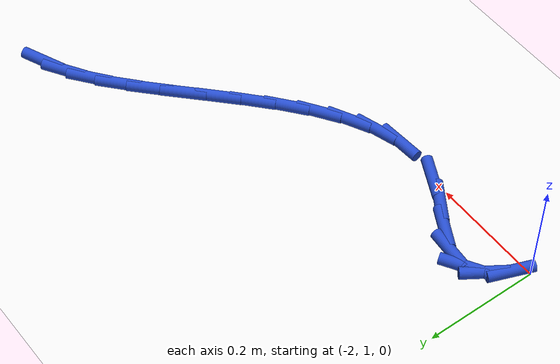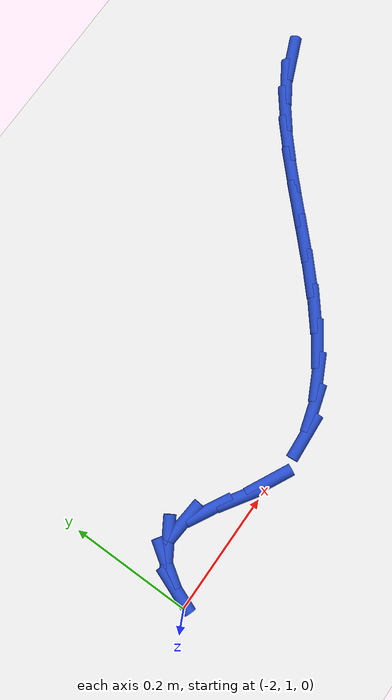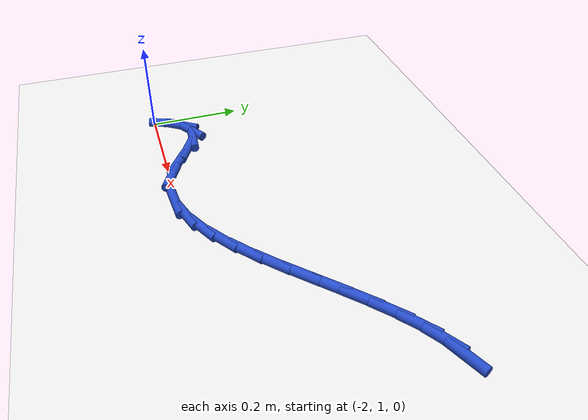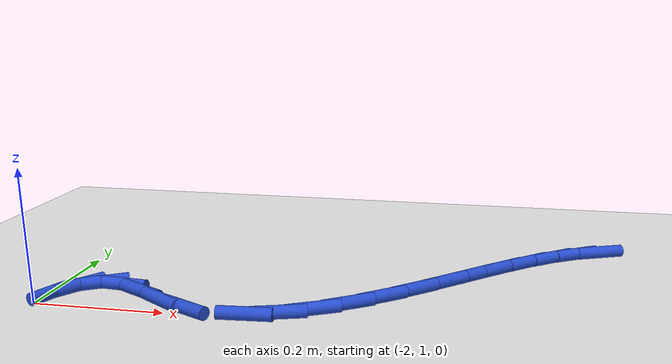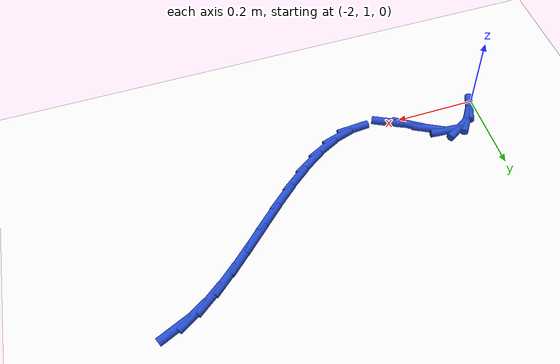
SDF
<sdf version="1.6">
 <world name="default">
  <model name="ground_plane">
   <static>1</static>
   <link name="link">
    <collision name="collision">
     <geometry><plane><normal>0 0 1</normal><size>100 100</size></plane></geometry>
     <surface><friction><ode><mu>100</mu><mu2>50</mu2></ode></friction></surface>
    </collision>
    <visual name="visual">
     <cast_shadows>0</cast_shadows>
     <geometry><plane><normal>0 0 1</normal><size>100 100</size></plane></geometry>
     <material>
      <script><uri>file://media/materials/scripts/gazebo.material</uri><name>Gazebo/WhiteGlow</name></script>
     </material>
    </visual>
   </link>
  </model>
  <model name="line">
   <link name="link_40">
    <pose>-1.172116230520439 1.3726186015328443 0.01 0 1.57 0.41244498337102103</pose>
    <collision name="collision">
     <geometry><cylinder><radius>0.01</radius><length>0.08</length></cylinder></geometry>
    </collision>
    <visual name="visual">
     <material>
      <script><name>Gazebo/Blue</name><uri>file://media/materials/scripts/gazebo.material</uri></script>
     </material>
     <geometry><cylinder><radius>0.01</radius><length>0.08</length></cylinder></geometry>
    </visual>
   </link>
   <link name="link_41">
    <pose>-1.2115989090555994 1.3553433048072339 0.01 0 1.57 0.5674167489670434</pose>
    <collision name="collision">
     <geometry><cylinder><radius>0.01</radius><length>0.08</length></cylinder></geometry>
    </collision>
    <visual name="visual">
     <material>
      <script><name>Gazebo/Blue</name><uri>file://media/materials/scripts/gazebo.material</uri></script>
     </material>
     <geometry><cylinder><radius>0.01</radius><length>0.08</length></cylinder></geometry>
    </visual>
   </link>
   <link name="link_42">
    <pose>-1.2516842445835892 1.3297957174104007 0.01 0 1.57 0.6683562304352626</pose>
    <collision name="collision">
     <geometry><cylinder><radius>0.01</radius><length>0.08</length></cylinder></geometry>
    </collision>
    <visual name="visual">
     <material>
      <script><name>Gazebo/Blue</name><uri>file://media/materials/scripts/gazebo.material</uri></script>
     </material>
     <geometry><cylinder><radius>0.01</radius><length>0.08</length></cylinder></geometry>
    </visual>
   </link>
   <link name="link_43">
    <pose>-1.2923412074064307 1.2976937055720725 0.01 0 1.57 0.7309447375592028</pose>
    <collision name="collision">
     <geometry><cylinder><radius>0.01</radius><length>0.08</length></cylinder></geometry>
    </collision>
    <visual name="visual">
     <material>
      <script><name>Gazebo/Blue</name><uri>file://media/materials/scripts/gazebo.material</uri></script>
     </material>
     <geometry><cylinder><radius>0.01</radius><length>0.08</length></cylinder></geometry>
    </visual>
   </link>
   <link name="link_44">
    <pose>-1.3335387678261452 1.2607551355219766 0.01 0 1.57 0.765222602714156</pose>
    <collision name="collision">
     <geometry><cylinder><radius>0.01</radius><length>0.08</length></cylinder></geometry>
    </collision>
    <visual name="visual">
     <material>
      <script><name>Gazebo/Blue</name><uri>file://media/materials/scripts/gazebo.material</uri></script>
     </material>
     <geometry><cylinder><radius>0.01</radius><length>0.08</length></cylinder></geometry>
    </visual>
   </link>
   <link name="link_45">
    <pose>-1.3752458961447538 1.220697873489841 0.01 0 1.57 0.7766998404765895</pose>
    <collision name="collision">
     <geometry><cylinder><radius>0.01</radius><length>0.08</length></cylinder></geometry>
    </collision>
    <visual name="visual">
     <material>
      <script><name>Gazebo/Blue</name><uri>file://media/materials/scripts/gazebo.material</uri></script>
     </material>
     <geometry><cylinder><radius>0.01</radius><length>0.08</length></cylinder></geometry>
    </visual>
   </link>
   <link name="link_46">
    <pose>-1.4174315626642782 1.1792397857053931 0.01 0 1.57 0.7675887476218077</pose>
    <collision name="collision">
     <geometry><cylinder><radius>0.01</radius><length>0.08</length></cylinder></geometry>
    </collision>
    <visual name="visual">
     <material>
      <script><name>Gazebo/Blue</name><uri>file://media/materials/scripts/gazebo.material</uri></script>
     </material>
     <geometry><cylinder><radius>0.01</radius><length>0.08</length></cylinder></geometry>
    </visual>
   </link>
   <link name="link_47">
    <pose>-1.46006473768674 1.1380987383983612 0.01 0 1.57 0.7374345503258862</pose>
    <collision name="collision">
     <geometry><cylinder><radius>0.01</radius><length>0.08</length></cylinder></geometry>
    </collision>
    <visual name="visual">
     <material>
      <script><name>Gazebo/Blue</name><uri>file://media/materials/scripts/gazebo.material</uri></script>
     </material>
     <geometry><cylinder><radius>0.01</radius><length>0.08</length></cylinder></geometry>
    </visual>
   </link>
   <link name="link_48">
    <pose>-1.5031143915141605 1.0989925977984718 0.01 0 1.57 0.6831805620847076</pose>
    <collision name="collision">
     <geometry><cylinder><radius>0.01</radius><length>0.08</length></cylinder></geometry>
    </collision>
    <visual name="visual">
     <material>
      <script><name>Gazebo/Blue</name><uri>file://media/materials/scripts/gazebo.material</uri></script>
     </material>
     <geometry><cylinder><radius>0.01</radius><length>0.08</length></cylinder></geometry>
    </visual>
   </link>
   <link name="link_49">
    <pose>-1.5465494944485612 1.0636392301354538 0.01 0 1.57 0.5988277823123604</pose>
    <collision name="collision">
     <geometry><cylinder><radius>0.01</radius><length>0.08</length></cylinder></geometry>
    </collision>
    <visual name="visual">
     <material>
      <script><name>Gazebo/Blue</name><uri>file://media/materials/scripts/gazebo.material</uri></script>
     </material>
     <geometry><cylinder><radius>0.01</radius><length>0.08</length></cylinder></geometry>
    </visual>
   </link>
   <link name="link_50">
    <pose>-1.5903390167919635 1.0337565016390338 0.01 0 1.57 0.47514668384444686</pose>
    <collision name="collision">
     <geometry><cylinder><radius>0.01</radius><length>0.08</length></cylinder></geometry>
    </collision>
    <visual name="visual">
     <material>
      <script><name>Gazebo/Blue</name><uri>file://media/materials/scripts/gazebo.material</uri></script>
     </material>
     <geometry><cylinder><radius>0.01</radius><length>0.08</length></cylinder></geometry>
    </visual>
   </link>
   <link name="link_51">
    <pose>-1.6344519288463895 1.01106227853894 0.01 0 1.57 0.30106206603726887</pose>
    <collision name="collision">
     <geometry><cylinder><radius>0.01</radius><length>0.08</length></cylinder></geometry>
    </collision>
    <visual name="visual">
     <material>
      <script><name>Gazebo/Blue</name><uri>file://media/materials/scripts/gazebo.material</uri></script>
     </material>
     <geometry><cylinder><radius>0.01</radius><length>0.08</length></cylinder></geometry>
    </visual>
   </link>
   <link name="link_52">
    <pose>-1.6788572009138591 0.9972744270648999 0.01 0 1.57 0.07070919263407373</pose>
    <collision name="collision">
     <geometry><cylinder><radius>0.01</radius><length>0.08</length></cylinder></geometry>
    </collision>
    <visual name="visual">
     <material>
      <script><name>Gazebo/Blue</name><uri>file://media/materials/scripts/gazebo.material</uri></script>
     </material>
     <geometry><cylinder><radius>0.01</radius><length>0.08</length></cylinder></geometry>
    </visual>
   </link>
   <link name="link_54">
    <pose>-1.7684207062960207 1.0032893039138915 0.01 0 1.57 -0.46210928625707387</pose>
    <collision name="collision">
     <geometry><cylinder><radius>0.01</radius><length>0.08</length></cylinder></geometry>
    </collision>
    <visual name="visual">
     <material>
      <script><name>Gazebo/Blue</name><uri>file://media/materials/scripts/gazebo.material</uri></script>
     </material>
     <geometry><cylinder><radius>0.01</radius><length>0.08</length></cylinder></geometry>
    </visual>
   </link>
   <link name="link_55">
    <pose>-1.8133858660015767 1.0256854864921512 0.01 0 1.57 -0.5722259225936407</pose>
    <collision name="collision">
     <geometry><cylinder><radius>0.01</radius><length>0.08</length></cylinder></geometry>
    </collision>
    <visual name="visual">
     <material>
      <script><name>Gazebo/Blue</name><uri>file://media/materials/scripts/gazebo.material</uri></script>
     </material>
     <geometry><cylinder><radius>0.01</radius><length>0.08</length></cylinder></geometry>
    </visual>
   </link>
   <link name="link_56">
    <pose>-1.8569456606068853 1.0537429367760447 0.01 0 1.57 -0.490184879598049</pose>
    <collision name="collision">
     <geometry><cylinder><radius>0.01</radius><length>0.08</length></cylinder></geometry>
    </collision>
    <visual name="visual">
     <material>
      <script><name>Gazebo/Blue</name><uri>file://media/materials/scripts/gazebo.material</uri></script>
     </material>
     <geometry><cylinder><radius>0.01</radius><length>0.08</length></cylinder></geometry>
    </visual>
   </link>
   <link name="link_57">
    <pose>-1.8968709537066084 1.0750480971956689 0.01 0 1.57 -0.08659081036548558</pose>
    <collision name="collision">
     <geometry><cylinder><radius>0.01</radius><length>0.08</length></cylinder></geometry>
    </collision>
    <visual name="visual">
     <material>
      <script><name>Gazebo/Blue</name><uri>file://media/materials/scripts/gazebo.material</uri></script>
     </material>
     <geometry><cylinder><radius>0.01</radius><length>0.08</length></cylinder></geometry>
    </visual>
   </link>
   <link name="link_58">
    <pose>-1.9310862112329228 1.0780182511586278 0.01 0 1.57 0.5546874246644931</pose>
    <collision name="collision">
     <geometry><cylinder><radius>0.01</radius><length>0.08</length></cylinder></geometry>
    </collision>
    <visual name="visual">
     <material>
      <script><name>Gazebo/Blue</name><uri>file://media/materials/scripts/gazebo.material</uri></script>
     </material>
     <geometry><cylinder><radius>0.01</radius><length>0.08</length></cylinder></geometry>
    </visual>
   </link>
   <link name="link_59">
    <pose>-1.9592532047016973 1.0605667349842203 0.01 0 1.57 0.982280465411509</pose>
    <collision name="collision">
     <geometry><cylinder><radius>0.01</radius><length>0.08</length></cylinder></geometry>
    </collision>
    <visual name="visual">
     <material>
      <script><name>Gazebo/Blue</name><uri>file://media/materials/scripts/gazebo.material</uri></script>
     </material>
     <geometry><cylinder><radius>0.01</radius><length>0.08</length></cylinder></geometry>
    </visual>
   </link>
   <link name="link_60">
    <pose>-1.982085556281319 1.0263562646894067 0.01 0 1.57 1.2024798161804648</pose>
    <collision name="collision">
     <geometry><cylinder><radius>0.01</radius><length>0.08</length></cylinder></geometry>
    </collision>
    <visual name="visual">
     <material>
      <script><name>Gazebo/Blue</name><uri>file://media/materials/scripts/gazebo.material</uri></script>
     </material>
     <geometry><cylinder><radius>0.01</radius><length>0.08</length></cylinder></geometry>
    </visual>
   </link>
  </model>
 </world>
</sdf>
